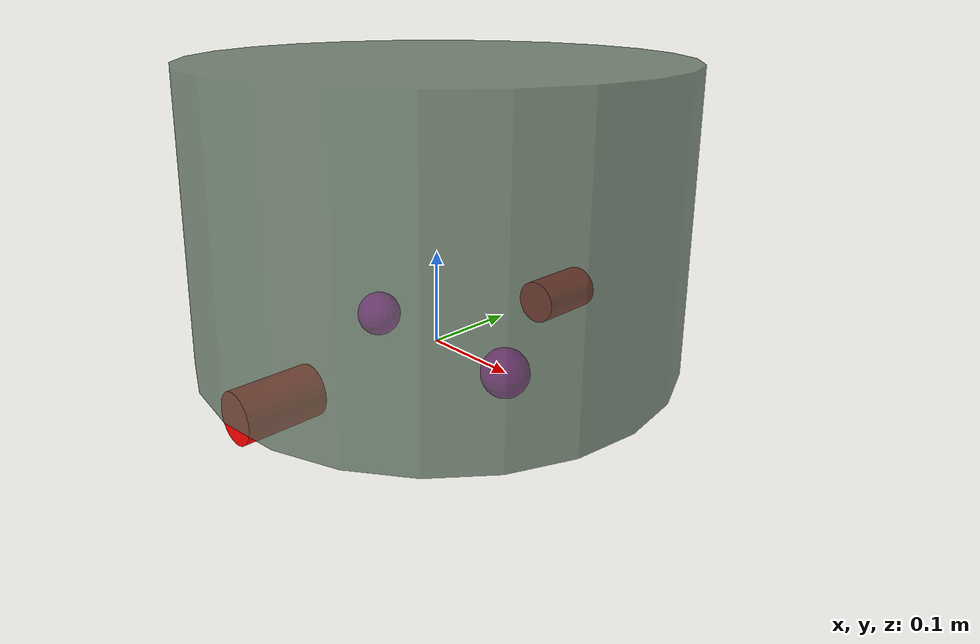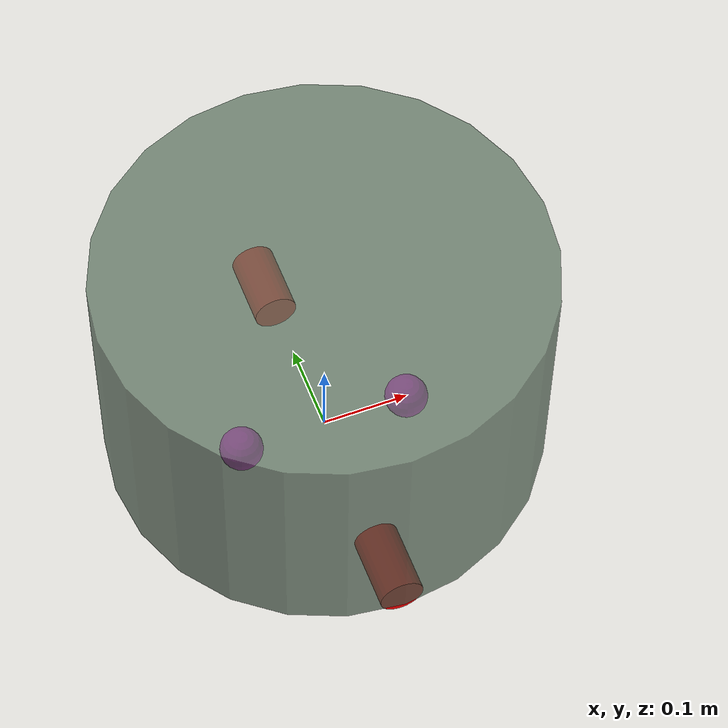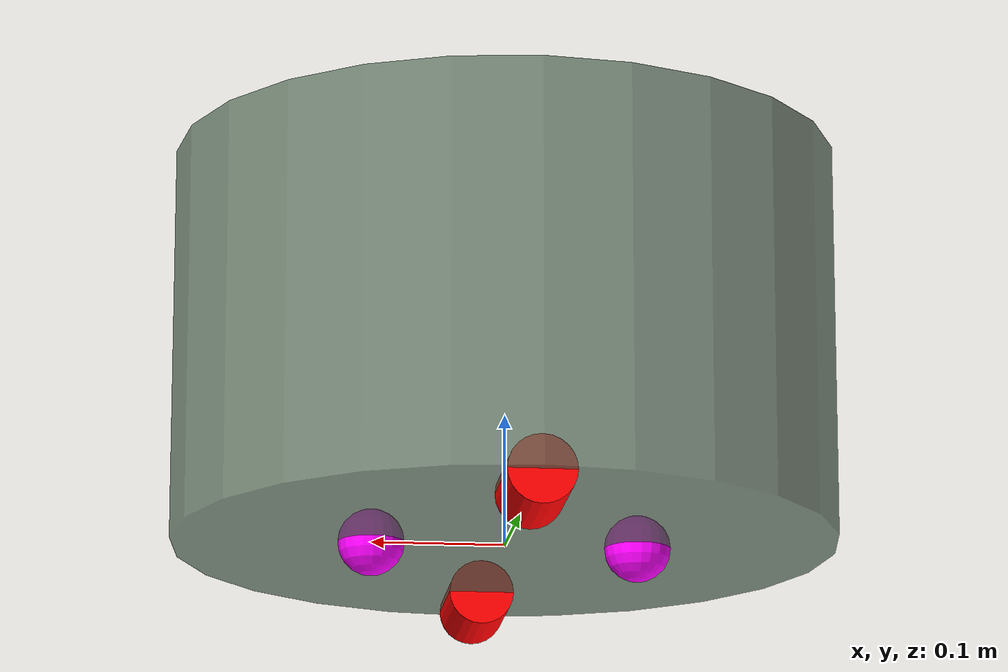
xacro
<?xml version="1.0" ?>

<robot name="robot" xmlns:xacro="http://www.ros.org/wiki/xacro">

    <gazebo reference="base_link">
        <material>Gazebo/Black</material>
    </gazebo>
    <gazebo reference="link_front_laser">
        <material>Gazebo/Blue</material>
    </gazebo>
    <gazebo reference="link_left_wheel">
        <material>Gazebo/Blue</material>
    </gazebo>
    <gazebo reference="link_right_wheel">
        <material>Gazebo/Blue</material>
    </gazebo>

    <!-- Parameters definition -->
    <xacro:property name="base_mass" value="20.5" />
    <xacro:property name="pi" value="3.14159265358979323846"/>
    <xacro:property name="vert_kaki" value = "0.349 0.439 0.361 0.75"/>

    <!-- Link - base_footprint -->
    <link name="base_footprint">
    </link>

    <!-- Joint - base_footprint / base_link -->
    <joint name="joint_base_link" type="fixed">
        <origin rpy="0 0 0" xyz="0 0 0.15" />
        <parent link="base_footprint" />
        <child link="base_link" />
    </joint>

    <!-- Link - base_link -->
    <link name="base_link">
        <inertial>
            <mass value="${base_mass}" />
            <origin xyz="0 0 0" rpy="0 0 0" />
            <inertia ixx="0.47406249999999994" ixy="0.0" ixz="0.0" iyy="0.47406249999999994" iyz="0.0" izz="0.640625" />
        </inertial>

        <collision>
            <origin xyz="0 0 0" rpy="0 0 0" />
            <geometry>
                <cylinder radius="0.25" length="0.30"/>
            </geometry>
        </collision>

        <visual>
            <origin xyz="0 0 0" rpy="0 0 0" />
            <geometry>
                <cylinder radius="0.25" length="0.30"/>
            </geometry>
            <material name="vert_kaki">
                <color rgba="0.349 0.439 0.361 0.75" />
            </material>
        </visual>
    </link>

    <!-- Joint - base_link / left_wheel -->
    <joint name="joint_base_left_wheel" type="continuous">
        <axis rpy="0 0 0" xyz="0 1 0" />
        <origin rpy="0 0 0" xyz="0 0.2 -0.15" />
        <child link="link_left_wheel" />
        <parent link="base_link" />
    </joint>

    <!-- Link left_wheel -->
    <link name="link_left_wheel">
        <inertial>
            <mass value="1"/>
            <origin xyz="0 0 0" rpy="0 0 0" />
            <inertia ixx="0.00034687500000000007" ixy="0.0" ixz="0.0" iyy="0.00034687500000000007" iyz="0.0" izz="0.0004687500000000001" />
        </inertial>

        <collision>
            <origin xyz="0 0 0" rpy="${pi/2} 0 0" />
            <geometry>
                <cylinder radius="0.025" length="0.08"/>
            </geometry>
        </collision>

        <visual>
            <origin xyz="0 0 0" rpy="${pi/2} 0 0" />
            <geometry>
                <cylinder radius="0.025" length="0.08"/>
            </geometry>
            <material name="rouge">
                <color rgba="1 0 0 1" />
            </material>
        </visual>
    </link>

    <!-- Joint - base_link / right_wheel -->
    <joint name="joint_base_right_wheel" type="continuous">
        <axis rpy="0 0 0" xyz="0 1 0" />
        <origin rpy="0 0 0" xyz="0 -0.20 -0.15" />
        <child link="link_right_wheel" />
        <parent link="base_link" />
    </joint>

    <!-- Link right_wheel -->
    <link name="link_right_wheel">
        <inertial>
            <mass value="1"/>
            <origin xyz="0 0 0" rpy="0 0 0" />
            <inertia ixx="0.00034687500000000007" ixy="0.0" ixz="0.0" iyy="0.00034687500000000007" iyz="0.0" izz="0.0004687500000000001" />
        </inertial>

        <collision>
            <origin xyz="0 0 0" rpy="${pi/2} 0 0" />
            <geometry>
                <cylinder radius="0.025" length="0.08"/>
            </geometry>
        </collision>

        <visual>
            <origin xyz="0 0 0" rpy="${pi/2} 0 0" />
            <geometry>
                <cylinder radius="0.025" length="0.08"/>
            </geometry>
            <material name="rouge">
                <color rgba="1 0 0 1" />
            </material>
        </visual>
    </link>

    <!-- Joint - base_link / front_caster_wheel -->
    <joint name="joint_front_caster_wheel" type="fixed">
        <origin rpy="0 0 0" xyz="0.1 0.0 -0.15" />
        <parent link="base_link" />
        <child link="link_front_caster_wheel" />
    </joint>

    <!-- Link front_caster_wheel -->
    <link name="link_front_caster_wheel">
        <inertial>
            <mass value="0.5"/>
            <origin xyz="0 0 0" rpy="0 0 0" />
            <inertia ixx="0.00012500000000000003" ixy="0.0" ixz="0.0" iyy="0.00012500000000000003" iyz="0.0" izz="0.00012500000000000003" />
        </inertial>

        <collision>
            <origin xyz="0 0 0" rpy="0 0 0" />
            <contact_coefficients mu="0.0" kp="0.0" kd="0.0" />
            <geometry>
                <sphere radius="0.025"/>
            </geometry>
        </collision>

        <visual>
            <origin xyz="0 0 0" rpy="0 0 0" />
            <geometry>
                <sphere radius="0.025"/>
            </geometry>
            <material name="purple">
                <color rgba="1 0 1 1" />
            </material>
        </visual>
    </link>

    <!-- Joint - base_link / back_caster_wheel -->
    <joint name="joint_back_caster_wheel" type="fixed">
        <origin rpy="0 0 0" xyz="-0.1 0 -0.15" />
        <parent link="base_link" />
        <child link="link_back_caster_wheel" />
    </joint>

    <!-- Link back_caster_wheel -->
    <link name="link_back_caster_wheel">
        <inertial>
            <mass value="0.5"/>
            <origin xyz="0 0 0" rpy="0 0 0" />
            <inertia ixx="0.00012500000000000003" ixy="0.0" ixz="0.0" iyy="0.00012500000000000003" iyz="0.0" izz="0.00012500000000000003" />
        </inertial>

        <collision>
            <origin xyz="0 0 0" rpy="0 0 0" />
            <geometry>
                <sphere radius="0.025"/>
            </geometry>
        </collision>

        <visual>
            <origin xyz="0 0 0" rpy="0 0 0" />
            <geometry>
                <sphere radius="0.025"/>
            </geometry>
            <material name="purple">
                <color rgba="1 0 1 1" />
            </material>
        </visual>
    </link>

    <!-- Joint - base_link / front_laser -->
    <joint name="joint_base_front_laser" type="fixed">
        <origin rpy="${pi} 0 0" xyz="0.25 0.0 0.075" />
        <parent link="base_link" />
        <child link="link_front_laser" />
    </joint>

    <!-- Link front_laser -->
    <link name="link_front_laser">
    </link>

    <!-- Gazebo friction and material properties for left_wheel -->
    <gazebo reference="link_left_wheel">
        <mu1 value="5.0"/>
		<mu2 value="0.5"/>
		<kp value="10000000.0" />
		<kd value="1.0" />
		<fdir1 value="1 0 0"/>
    </gazebo>

    <!-- Gazebo friction and material properties for right_wheel -->
    <gazebo reference="link_right_wheel">
        <mu1 value="5.0"/>
		<mu2 value="0.5"/>
		<kp value="10000000.0" />
		<kd value="1.0" />
		<fdir1 value="1 0 0"/>
    </gazebo>

    <!-- Gazebo friction and material properties for front_caster -->
    <gazebo reference="link_front_caster_wheel">
        <mu1 value="0.0"/>
        <mu2 value="0.0"/>
        <kp value="10000000.0" />
        <kd value="100.0" />
        <fdir1 value="0 0 1"/>
        <material>Gazebo/Gray</material>
    </gazebo>

    <!-- Gazebo friction and material properties for back_caster -->
    <gazebo reference="link_back_caster_wheel">
        <mu1 value="0.0"/>
        <mu2 value="0.0"/>
        <kp value="10000000.0" />
        <kd value="100.0" />
        <fdir1 value="0 0 1"/>
        <material>Gazebo/Gray</material>
    </gazebo>

    <!-- Gazebo plugin for Differential drive controller -->
    <gazebo>
        <plugin filename="libgazebo_ros_diff_drive.so" name="differential_drive_controller">
            <alwaysOn>true</alwaysOn>
            <updateRate>20</updateRate>
            <leftJoint>joint_base_left_wheel</leftJoint>
            <rightJoint>joint_base_right_wheel</rightJoint>
            <publishWheelTF>true</publishWheelTF>
            <wheelSeparation>0.4</wheelSeparation>
            <wheelDiameter>0.05</wheelDiameter>
            <torque>10</torque>
            <commandTopic>cmd_vel</commandTopic>
            <odometryTopic>odom</odometryTopic>
            <odometryFrame>odom</odometryFrame>
            <robotBaseFrame>base_footprint</robotBaseFrame>
        </plugin>
    </gazebo>

    <!-- Gazebo configuration for the front laser sensor -->
    <gazebo reference="link_front_laser">
        <sensor type="ray" name="head_hokuyo_sensor">
            <pose>0 0 0 0 0 0</pose>
            <visualize>true</visualize>
            <update_rate>20</update_rate>
            <ray>
                <scan>
                    <horizontal>
                        <samples>720</samples>
                        <resolution>1</resolution>
                        <min_angle>-1.570796</min_angle>
                        <max_angle>1.570796</max_angle>
                    </horizontal>
                </scan>
                <!-- Configure the range properties -->
                <range>
                    <min>0.1</min>
                    <max>10.0</max>
                    <resolution>0.01</resolution>
                </range>
                <!-- Configure the noise properties -->
                <noise>
                    <type>gaussian</type>
                    <mean>0.0</mean>
                    <stddev>0.01</stddev>
                </noise>
            </ray>
            <!-- Attach a Gazebo plugin to the sensor for ROS integration -->
            <plugin name="gazebo_ros_head_hokuyo_controller" filename="libgazebo_ros_laser.so">
                <topicName>/scan</topicName>
                <frameName>sensor_laser</frameName>
            </plugin>
        </sensor>
    </gazebo>
</robot>
